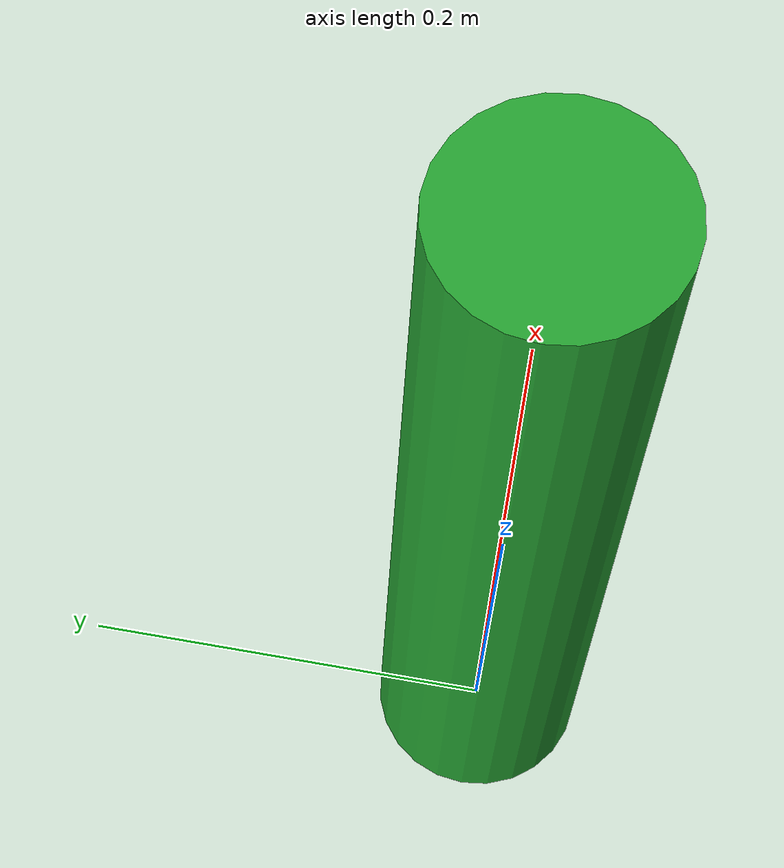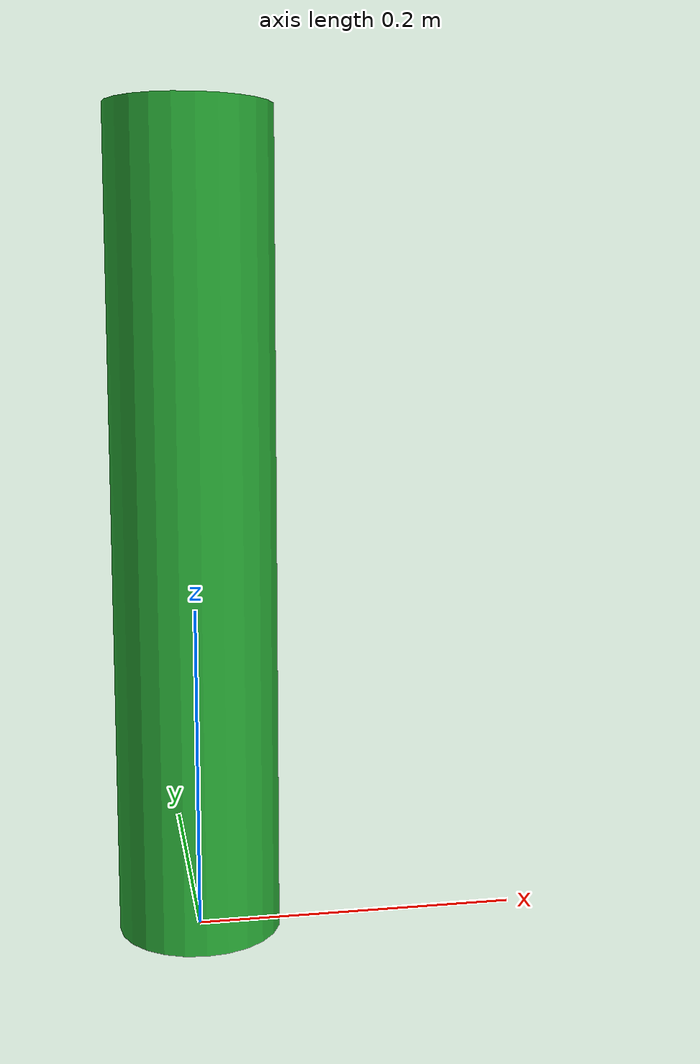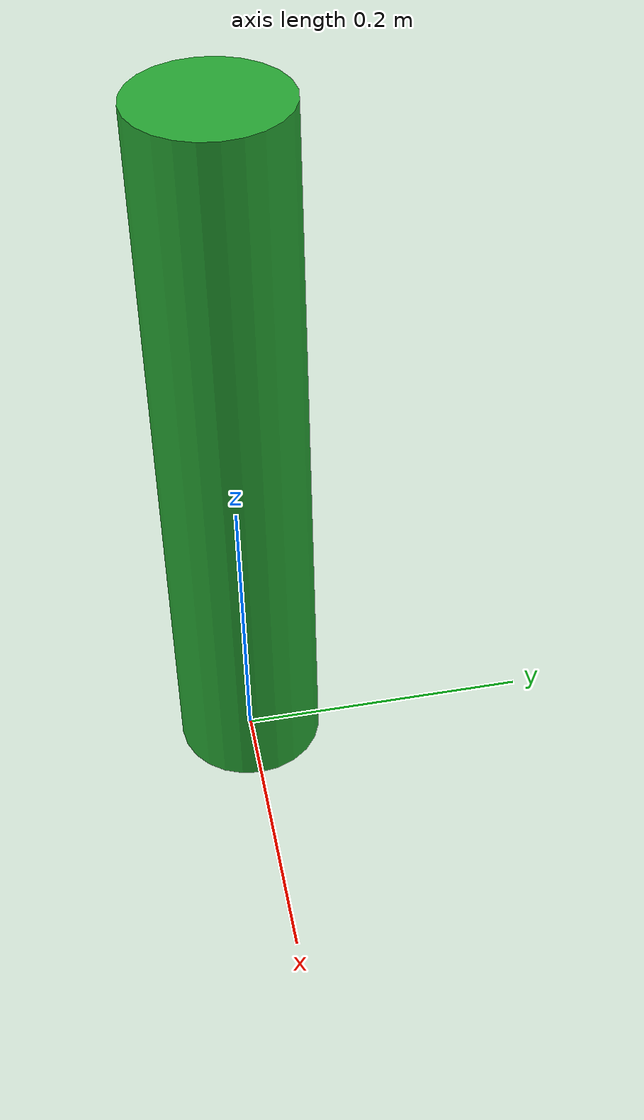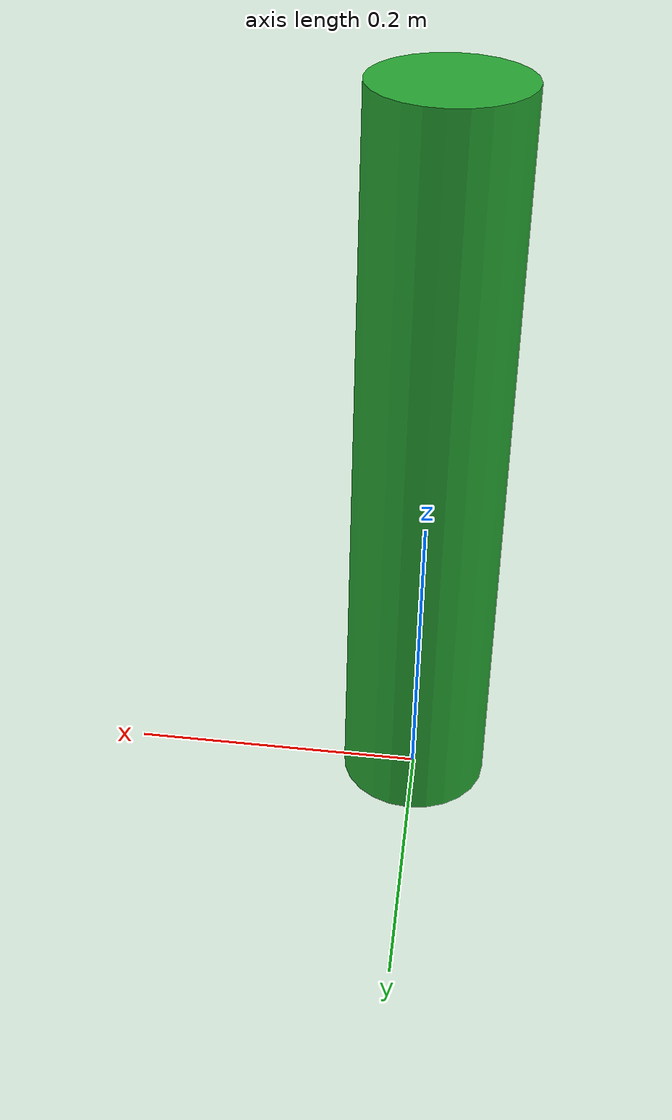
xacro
<?xml version="1.0"?>
<robot xmlns:xacro="http://ros.org/wiki/xacro">

  <!-- Define link2 -->
  <link name="link2">
    <!-- Visual -->
    <visual>
      <origin xyz="0 0 0.25" rpy="0 0 0"/>
      <geometry>
        <cylinder length="0.5" radius="0.05"/>
      </geometry>
      <material name="Green"/>
    </visual>

    <!-- Collision -->
    <collision>
      <origin xyz="0 0 0.25" rpy="0 0 0"/>
      <geometry>
        <cylinder length="0.5" radius="0.05"/>
      </geometry>
    </collision>

    <!-- Inertial -->
    <inertial>
      <mass value="1.0"/>
      <inertia ixx="0.005" ixy="0.0" ixz="0.0"
               iyy="0.005" iyz="0.0"
               izz="0.005"/>
    </inertial>
  </link>

</robot>
